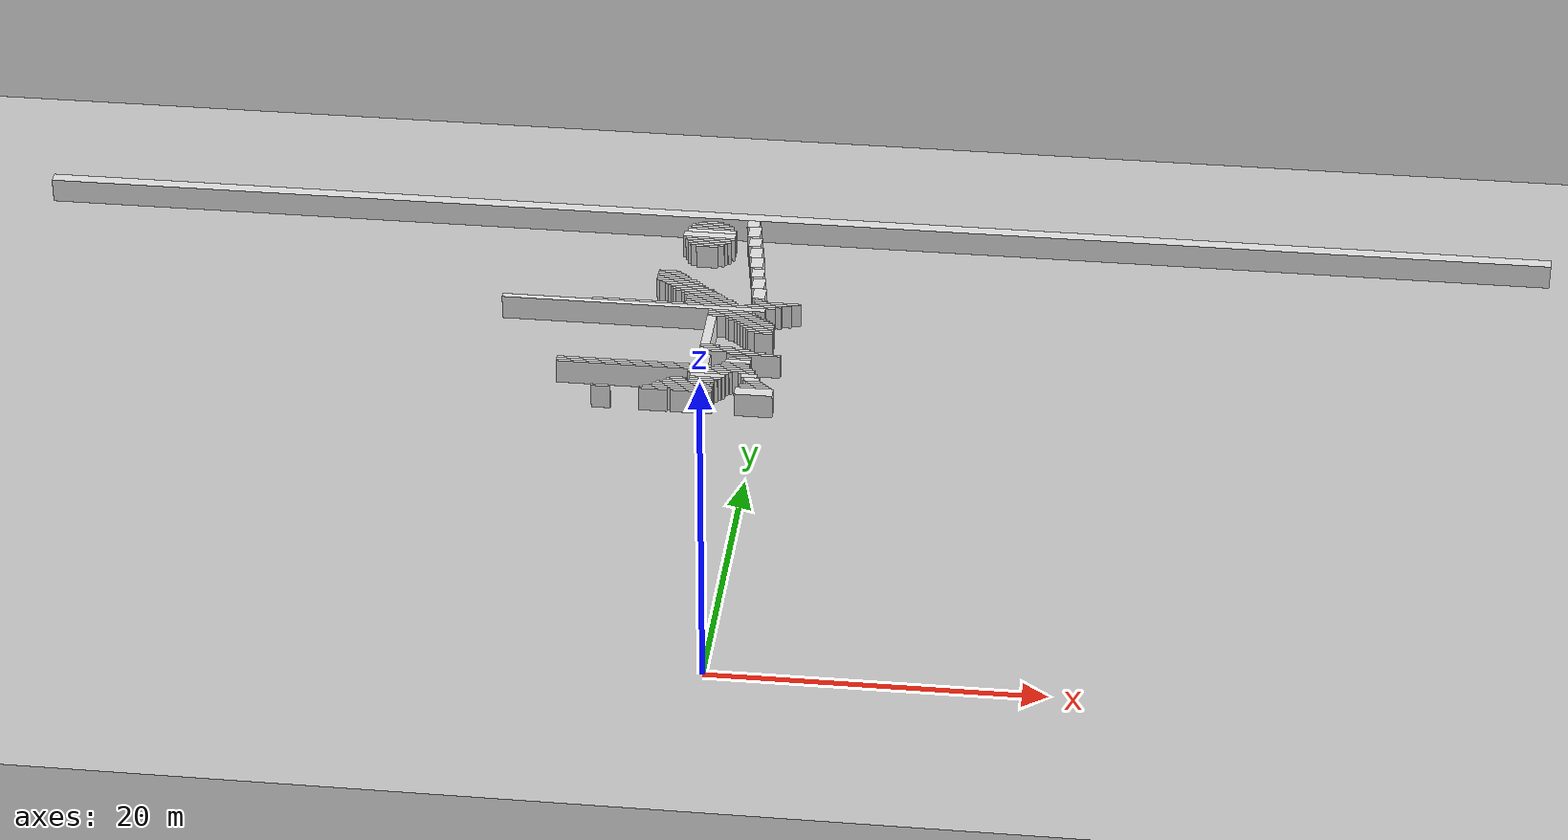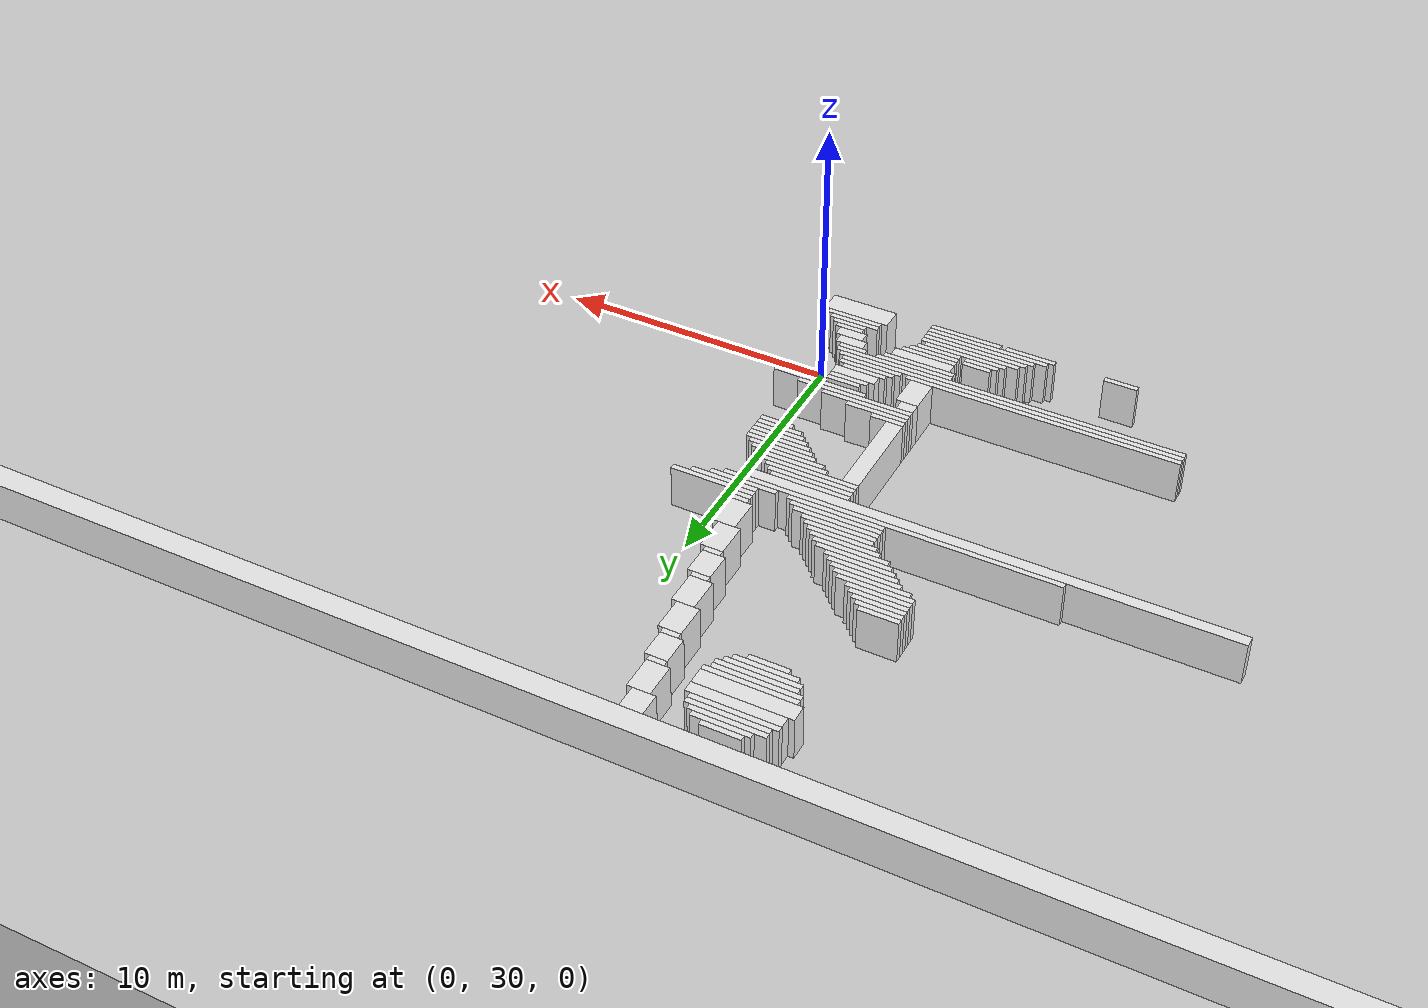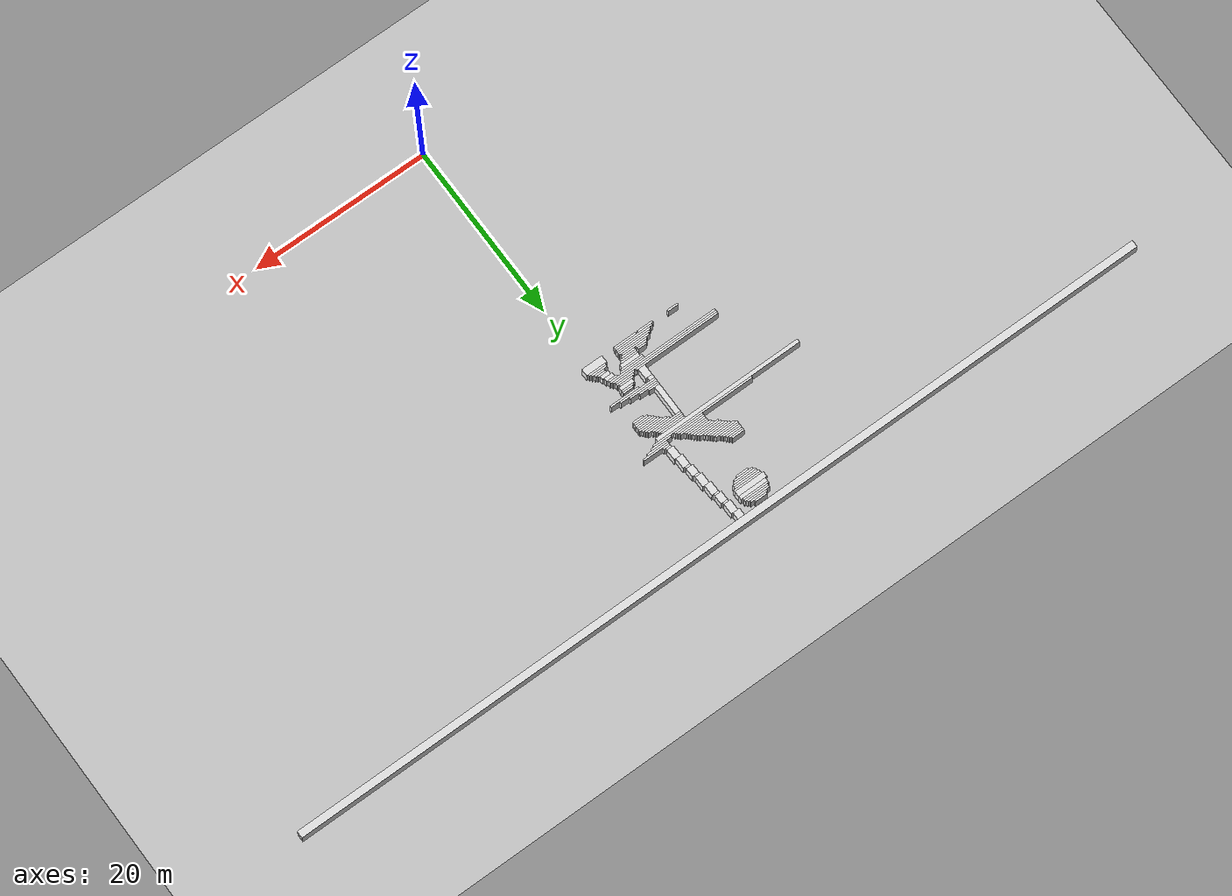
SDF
<sdf version="1.7">
 <world name="default">
  <model name="ground_plane">
   <static>1</static>
   <link name="link">
    <collision name="collision">
     <geometry><plane><normal>0 0 1</normal><size>120 120</size></plane></geometry>
    </collision>
    <visual name="visual">
     <geometry><plane><normal>0 0 1</normal><size>120 120</size></plane></geometry>
     <material>
      <script><uri>file://media/materials/scripts/gazebo.material</uri><name>Gazebo/Grey</name></script>
     </material>
    </visual>
   </link>
  </model>
  <model name="random_complex_02_model">
   <static>1</static>
   <link name="obs_1">
    <pose>-0.4000 48.8000 0.8000 0 0 0</pose>
    <collision name="obs_1_col"><geometry><box><size>99.2000 0.8000 1.6000</size></box></geometry></collision>
    <visual name="obs_1_vis">
     <geometry><box><size>99.2000 0.8000 1.6000</size></box></geometry>
     <material>
      <script><uri>file://media/materials/scripts/gazebo.material</uri><name>Gazebo/White</name></script>
     </material>
    </visual>
   </link>
   <link name="obs_14">
    <pose>-5.5000 47.9000 0.8000 0 0 0</pose>
    <collision name="obs_14_col"><geometry><box><size>1.4000 0.2000 1.6000</size></box></geometry></collision>
    <visual name="obs_14_vis">
     <geometry><box><size>1.4000 0.2000 1.6000</size></box></geometry>
     <material>
      <script><uri>file://media/materials/scripts/gazebo.material</uri><name>Gazebo/White</name></script>
     </material>
    </visual>
   </link>
   <link name="obs_18">
    <pose>-2.8000 48.0000 0.8000 0 0 0</pose>
    <collision name="obs_18_col"><geometry><box><size>0.8000 0.8000 1.6000</size></box></geometry></collision>
    <visual name="obs_18_vis">
     <geometry><box><size>0.8000 0.8000 1.6000</size></box></geometry>
     <material>
      <script><uri>file://media/materials/scripts/gazebo.material</uri><name>Gazebo/White</name></script>
     </material>
    </visual>
   </link>
   <link name="obs_21">
    <pose>-5.4000 47.7000 0.8000 0 0 0</pose>
    <collision name="obs_21_col"><geometry><box><size>2.0000 0.2000 1.6000</size></box></geometry></collision>
    <visual name="obs_21_vis">
     <geometry><box><size>2.0000 0.2000 1.6000</size></box></geometry>
     <material>
      <script><uri>file://media/materials/scripts/gazebo.material</uri><name>Gazebo/White</name></script>
     </material>
    </visual>
   </link>
   <link name="obs_29">
    <pose>-5.5000 47.5000 0.8000 0 0 0</pose>
    <collision name="obs_29_col"><geometry><box><size>2.6000 0.2000 1.6000</size></box></geometry></collision>
    <visual name="obs_29_vis">
     <geometry><box><size>2.6000 0.2000 1.6000</size></box></geometry>
     <material>
      <script><uri>file://media/materials/scripts/gazebo.material</uri><name>Gazebo/White</name></script>
     </material>
    </visual>
   </link>
   <link name="obs_36">
    <pose>-5.4000 47.3000 0.8000 0 0 0</pose>
    <collision name="obs_36_col"><geometry><box><size>2.8000 0.2000 1.6000</size></box></geometry></collision>
    <visual name="obs_36_vis">
     <geometry><box><size>2.8000 0.2000 1.6000</size></box></geometry>
     <material>
      <script><uri>file://media/materials/scripts/gazebo.material</uri><name>Gazebo/White</name></script>
     </material>
    </visual>
   </link>
   <link name="obs_43">
    <pose>-5.5000 47.1000 0.8000 0 0 0</pose>
    <collision name="obs_43_col"><geometry><box><size>3.0000 0.2000 1.6000</size></box></geometry></collision>
    <visual name="obs_43_vis">
     <geometry><box><size>3.0000 0.2000 1.6000</size></box></geometry>
     <material>
      <script><uri>file://media/materials/scripts/gazebo.material</uri><name>Gazebo/White</name></script>
     </material>
    </visual>
   </link>
   <link name="obs_53">
    <pose>-5.4000 46.8000 0.8000 0 0 0</pose>
    <collision name="obs_53_col"><geometry><box><size>3.2000 0.4000 1.6000</size></box></geometry></collision>
    <visual name="obs_53_vis">
     <geometry><box><size>3.2000 0.4000 1.6000</size></box></geometry>
     <material>
      <script><uri>file://media/materials/scripts/gazebo.material</uri><name>Gazebo/White</name></script>
     </material>
    </visual>
   </link>
   <link name="obs_60">
    <pose>-2.6000 47.0000 0.8000 0 0 0</pose>
    <collision name="obs_60_col"><geometry><box><size>0.8000 1.2000 1.6000</size></box></geometry></collision>
    <visual name="obs_60_vis">
     <geometry><box><size>0.8000 1.2000 1.6000</size></box></geometry>
     <material>
      <script><uri>file://media/materials/scripts/gazebo.material</uri><name>Gazebo/White</name></script>
     </material>
    </visual>
   </link>
   <link name="obs_71">
    <pose>-2.5000 46.3000 0.8000 0 0 0</pose>
    <collision name="obs_71_col"><geometry><box><size>0.6000 0.2000 1.6000</size></box></geometry></collision>
    <visual name="obs_71_vis">
     <geometry><box><size>0.6000 0.2000 1.6000</size></box></geometry>
     <material>
      <script><uri>file://media/materials/scripts/gazebo.material</uri><name>Gazebo/White</name></script>
     </material>
    </visual>
   </link>
   <link name="obs_75">
    <pose>-5.5000 46.3000 0.8000 0 0 0</pose>
    <collision name="obs_75_col"><geometry><box><size>3.4000 0.6000 1.6000</size></box></geometry></collision>
    <visual name="obs_75_vis">
     <geometry><box><size>3.4000 0.6000 1.6000</size></box></geometry>
     <material>
      <script><uri>file://media/materials/scripts/gazebo.material</uri><name>Gazebo/White</name></script>
     </material>
    </visual>
   </link>
   <link name="obs_88">
    <pose>-5.4000 45.9000 0.8000 0 0 0</pose>
    <collision name="obs_88_col"><geometry><box><size>3.2000 0.2000 1.6000</size></box></geometry></collision>
    <visual name="obs_88_vis">
     <geometry><box><size>3.2000 0.2000 1.6000</size></box></geometry>
     <material>
      <script><uri>file://media/materials/scripts/gazebo.material</uri><name>Gazebo/White</name></script>
     </material>
    </visual>
   </link>
   <link name="obs_95">
    <pose>-5.5000 45.7000 0.8000 0 0 0</pose>
    <collision name="obs_95_col"><geometry><box><size>3.0000 0.2000 1.6000</size></box></geometry></collision>
    <visual name="obs_95_vis">
     <geometry><box><size>3.0000 0.2000 1.6000</size></box></geometry>
     <material>
      <script><uri>file://media/materials/scripts/gazebo.material</uri><name>Gazebo/White</name></script>
     </material>
    </visual>
   </link>
   <link name="obs_102">
    <pose>-5.4000 45.5000 0.8000 0 0 0</pose>
    <collision name="obs_102_col"><geometry><box><size>2.8000 0.2000 1.6000</size></box></geometry></collision>
    <visual name="obs_102_vis">
     <geometry><box><size>2.8000 0.2000 1.6000</size></box></geometry>
     <material>
      <script><uri>file://media/materials/scripts/gazebo.material</uri><name>Gazebo/White</name></script>
     </material>
    </visual>
   </link>
   <link name="obs_105">
    <pose>-2.4000 45.7000 0.8000 0 0 0</pose>
    <collision name="obs_105_col"><geometry><box><size>0.8000 1.0000 1.6000</size></box></geometry></collision>
    <visual name="obs_105_vis">
     <geometry><box><size>0.8000 1.0000 1.6000</size></box></geometry>
     <material>
      <script><uri>file://media/materials/scripts/gazebo.material</uri><name>Gazebo/White</name></script>
     </material>
    </visual>
   </link>
   <link name="obs_111">
    <pose>-5.5000 45.3000 0.8000 0 0 0</pose>
    <collision name="obs_111_col"><geometry><box><size>2.6000 0.2000 1.6000</size></box></geometry></collision>
    <visual name="obs_111_vis">
     <geometry><box><size>2.6000 0.2000 1.6000</size></box></geometry>
     <material>
      <script><uri>file://media/materials/scripts/gazebo.material</uri><name>Gazebo/White</name></script>
     </material>
    </visual>
   </link>
   <link name="obs_122">
    <pose>-5.5000 45.1000 0.8000 0 0 0</pose>
    <collision name="obs_122_col"><geometry><box><size>2.2000 0.2000 1.6000</size></box></geometry></collision>
    <visual name="obs_122_vis">
     <geometry><box><size>2.2000 0.2000 1.6000</size></box></geometry>
     <material>
      <script><uri>file://media/materials/scripts/gazebo.material</uri><name>Gazebo/White</name></script>
     </material>
    </visual>
   </link>
   <link name="obs_123">
    <pose>-2.3000 45.1000 0.8000 0 0 0</pose>
    <collision name="obs_123_col"><geometry><box><size>0.6000 0.2000 1.6000</size></box></geometry></collision>
    <visual name="obs_123_vis">
     <geometry><box><size>0.6000 0.2000 1.6000</size></box></geometry>
     <material>
      <script><uri>file://media/materials/scripts/gazebo.material</uri><name>Gazebo/White</name></script>
     </material>
    </visual>
   </link>
   <link name="obs_131">
    <pose>-5.5000 44.9000 0.8000 0 0 0</pose>
    <collision name="obs_131_col"><geometry><box><size>1.4000 0.2000 1.6000</size></box></geometry></collision>
    <visual name="obs_131_vis">
     <geometry><box><size>1.4000 0.2000 1.6000</size></box></geometry>
     <material>
      <script><uri>file://media/materials/scripts/gazebo.material</uri><name>Gazebo/White</name></script>
     </material>
    </visual>
   </link>
   <link name="obs_164">
    <pose>-2.2000 44.4000 0.8000 0 0 0</pose>
    <collision name="obs_164_col"><geometry><box><size>0.8000 1.2000 1.6000</size></box></geometry></collision>
    <visual name="obs_164_vis">
     <geometry><box><size>0.8000 1.2000 1.6000</size></box></geometry>
     <material>
      <script><uri>file://media/materials/scripts/gazebo.material</uri><name>Gazebo/White</name></script>
     </material>
    </visual>
   </link>
   <link name="obs_207">
    <pose>-2.0000 43.2000 0.8000 0 0 0</pose>
    <collision name="obs_207_col"><geometry><box><size>0.8000 1.2000 1.6000</size></box></geometry></collision>
    <visual name="obs_207_vis">
     <geometry><box><size>0.8000 1.2000 1.6000</size></box></geometry>
     <material>
      <script><uri>file://media/materials/scripts/gazebo.material</uri><name>Gazebo/White</name></script>
     </material>
    </visual>
   </link>
   <link name="obs_220">
    <pose>-1.9000 42.5000 0.8000 0 0 0</pose>
    <collision name="obs_220_col"><geometry><box><size>0.6000 0.2000 1.6000</size></box></geometry></collision>
    <visual name="obs_220_vis">
     <geometry><box><size>0.6000 0.2000 1.6000</size></box></geometry>
     <material>
      <script><uri>file://media/materials/scripts/gazebo.material</uri><name>Gazebo/White</name></script>
     </material>
    </visual>
   </link>
   <link name="obs_249">
    <pose>-1.8000 41.9000 0.8000 0 0 0</pose>
    <collision name="obs_249_col"><geometry><box><size>0.8000 1.0000 1.6000</size></box></geometry></collision>
    <visual name="obs_249_vis">
     <geometry><box><size>0.8000 1.0000 1.6000</size></box></geometry>
     <material>
      <script><uri>file://media/materials/scripts/gazebo.material</uri><name>Gazebo/White</name></script>
     </material>
    </visual>
   </link>
   <link name="obs_257">
    <pose>-7.5000 41.5000 0.8000 0 0 0</pose>
    <collision name="obs_257_col"><geometry><box><size>1.4000 0.2000 1.6000</size></box></geometry></collision>
    <visual name="obs_257_vis">
     <geometry><box><size>1.4000 0.2000 1.6000</size></box></geometry>
     <material>
      <script><uri>file://media/materials/scripts/gazebo.material</uri><name>Gazebo/White</name></script>
     </material>
    </visual>
   </link>
   <link name="obs_266">
    <pose>-7.4000 41.3000 0.8000 0 0 0</pose>
    <collision name="obs_266_col"><geometry><box><size>1.6000 0.2000 1.6000</size></box></geometry></collision>
    <visual name="obs_266_vis">
     <geometry><box><size>1.6000 0.2000 1.6000</size></box></geometry>
     <material>
      <script><uri>file://media/materials/scripts/gazebo.material</uri><name>Gazebo/White</name></script>
     </material>
    </visual>
   </link>
   <link name="obs_267">
    <pose>-1.7000 41.3000 0.8000 0 0 0</pose>
    <collision name="obs_267_col"><geometry><box><size>0.6000 0.2000 1.6000</size></box></geometry></collision>
    <visual name="obs_267_vis">
     <geometry><box><size>0.6000 0.2000 1.6000</size></box></geometry>
     <material>
      <script><uri>file://media/materials/scripts/gazebo.material</uri><name>Gazebo/White</name></script>
     </material>
    </visual>
   </link>
   <link name="obs_274">
    <pose>-7.3000 41.1000 0.8000 0 0 0</pose>
    <collision name="obs_274_col"><geometry><box><size>1.8000 0.2000 1.6000</size></box></geometry></collision>
    <visual name="obs_274_vis">
     <geometry><box><size>1.8000 0.2000 1.6000</size></box></geometry>
     <material>
      <script><uri>file://media/materials/scripts/gazebo.material</uri><name>Gazebo/White</name></script>
     </material>
    </visual>
   </link>
   <link name="obs_283">
    <pose>-7.2000 40.9000 0.8000 0 0 0</pose>
    <collision name="obs_283_col"><geometry><box><size>2.0000 0.2000 1.6000</size></box></geometry></collision>
    <visual name="obs_283_vis">
     <geometry><box><size>2.0000 0.2000 1.6000</size></box></geometry>
     <material>
      <script><uri>file://media/materials/scripts/gazebo.material</uri><name>Gazebo/White</name></script>
     </material>
    </visual>
   </link>
   <link name="obs_293">
    <pose>-7.1000 40.7000 0.8000 0 0 0</pose>
    <collision name="obs_293_col"><geometry><box><size>2.2000 0.2000 1.6000</size></box></geometry></collision>
    <visual name="obs_293_vis">
     <geometry><box><size>2.2000 0.2000 1.6000</size></box></geometry>
     <material>
      <script><uri>file://media/materials/scripts/gazebo.material</uri><name>Gazebo/White</name></script>
     </material>
    </visual>
   </link>
   <link name="obs_303">
    <pose>-6.9000 40.5000 0.8000 0 0 0</pose>
    <collision name="obs_303_col"><geometry><box><size>2.6000 0.2000 1.6000</size></box></geometry></collision>
    <visual name="obs_303_vis">
     <geometry><box><size>2.6000 0.2000 1.6000</size></box></geometry>
     <material>
      <script><uri>file://media/materials/scripts/gazebo.material</uri><name>Gazebo/White</name></script>
     </material>
    </visual>
   </link>
   <link name="obs_312">
    <pose>-6.7000 40.3000 0.8000 0 0 0</pose>
    <collision name="obs_312_col"><geometry><box><size>2.6000 0.2000 1.6000</size></box></geometry></collision>
    <visual name="obs_312_vis">
     <geometry><box><size>2.6000 0.2000 1.6000</size></box></geometry>
     <material>
      <script><uri>file://media/materials/scripts/gazebo.material</uri><name>Gazebo/White</name></script>
     </material>
    </visual>
   </link>
   <link name="obs_317">
    <pose>-1.6000 40.6000 0.8000 0 0 0</pose>
    <collision name="obs_317_col"><geometry><box><size>0.8000 1.2000 1.6000</size></box></geometry></collision>
    <visual name="obs_317_vis">
     <geometry><box><size>0.8000 1.2000 1.6000</size></box></geometry>
     <material>
      <script><uri>file://media/materials/scripts/gazebo.material</uri><name>Gazebo/White</name></script>
     </material>
    </visual>
   </link>
   <link name="obs_324">
    <pose>-6.4000 40.1000 0.8000 0 0 0</pose>
    <collision name="obs_324_col"><geometry><box><size>2.4000 0.2000 1.6000</size></box></geometry></collision>
    <visual name="obs_324_vis">
     <geometry><box><size>2.4000 0.2000 1.6000</size></box></geometry>
     <material>
      <script><uri>file://media/materials/scripts/gazebo.material</uri><name>Gazebo/White</name></script>
     </material>
    </visual>
   </link>
   <link name="obs_334">
    <pose>-6.2000 39.9000 0.8000 0 0 0</pose>
    <collision name="obs_334_col"><geometry><box><size>2.4000 0.2000 1.6000</size></box></geometry></collision>
    <visual name="obs_334_vis">
     <geometry><box><size>2.4000 0.2000 1.6000</size></box></geometry>
     <material>
      <script><uri>file://media/materials/scripts/gazebo.material</uri><name>Gazebo/White</name></script>
     </material>
    </visual>
   </link>
   <link name="obs_340">
    <pose>-6.0000 39.7000 0.8000 0 0 0</pose>
    <collision name="obs_340_col"><geometry><box><size>2.4000 0.2000 1.6000</size></box></geometry></collision>
    <visual name="obs_340_vis">
     <geometry><box><size>2.4000 0.2000 1.6000</size></box></geometry>
     <material>
      <script><uri>file://media/materials/scripts/gazebo.material</uri><name>Gazebo/White</name></script>
     </material>
    </visual>
   </link>
   <link name="obs_348">
    <pose>-5.7000 39.5000 0.8000 0 0 0</pose>
    <collision name="obs_348_col"><geometry><box><size>2.6000 0.2000 1.6000</size></box></geometry></collision>
    <visual name="obs_348_vis">
     <geometry><box><size>2.6000 0.2000 1.6000</size></box></geometry>
     <material>
      <script><uri>file://media/materials/scripts/gazebo.material</uri><name>Gazebo/White</name></script>
     </material>
    </visual>
   </link>
   <link name="obs_358">
    <pose>-5.5000 39.3000 0.8000 0 0 0</pose>
    <collision name="obs_358_col"><geometry><box><size>2.6000 0.2000 1.6000</size></box></geometry></collision>
    <visual name="obs_358_vis">
     <geometry><box><size>2.6000 0.2000 1.6000</size></box></geometry>
     <material>
      <script><uri>file://media/materials/scripts/gazebo.material</uri><name>Gazebo/White</name></script>
     </material>
    </visual>
   </link>
   <link name="obs_365">
    <pose>-5.2000 39.1000 0.8000 0 0 0</pose>
    <collision name="obs_365_col"><geometry><box><size>2.4000 0.2000 1.6000</size></box></geometry></collision>
    <visual name="obs_365_vis">
     <geometry><box><size>2.4000 0.2000 1.6000</size></box></geometry>
     <material>
      <script><uri>file://media/materials/scripts/gazebo.material</uri><name>Gazebo/White</name></script>
     </material>
    </visual>
   </link>
   <link name="obs_370">
    <pose>-1.4000 39.4000 0.8000 0 0 0</pose>
    <collision name="obs_370_col"><geometry><box><size>0.8000 1.2000 1.6000</size></box></geometry></collision>
    <visual name="obs_370_vis">
     <geometry><box><size>0.8000 1.2000 1.6000</size></box></geometry>
     <material>
      <script><uri>file://media/materials/scripts/gazebo.material</uri><name>Gazebo/White</name></script>
     </material>
    </visual>
   </link>
   <link name="obs_375">
    <pose>-5.0000 38.9000 0.8000 0 0 0</pose>
    <collision name="obs_375_col"><geometry><box><size>2.4000 0.2000 1.6000</size></box></geometry></collision>
    <visual name="obs_375_vis">
     <geometry><box><size>2.4000 0.2000 1.6000</size></box></geometry>
     <material>
      <script><uri>file://media/materials/scripts/gazebo.material</uri><name>Gazebo/White</name></script>
     </material>
    </visual>
   </link>
   <link name="obs_384">
    <pose>-4.8000 38.7000 0.8000 0 0 0</pose>
    <collision name="obs_384_col"><geometry><box><size>2.4000 0.2000 1.6000</size></box></geometry></collision>
    <visual name="obs_384_vis">
     <geometry><box><size>2.4000 0.2000 1.6000</size></box></geometry>
     <material>
      <script><uri>file://media/materials/scripts/gazebo.material</uri><name>Gazebo/White</name></script>
     </material>
    </visual>
   </link>
   <link name="obs_385">
    <pose>-1.3000 38.7000 0.8000 0 0 0</pose>
    <collision name="obs_385_col"><geometry><box><size>0.6000 0.2000 1.6000</size></box></geometry></collision>
    <visual name="obs_385_vis">
     <geometry><box><size>0.6000 0.2000 1.6000</size></box></geometry>
     <material>
      <script><uri>file://media/materials/scripts/gazebo.material</uri><name>Gazebo/White</name></script>
     </material>
    </visual>
   </link>
   <link name="obs_393">
    <pose>-4.7000 38.5000 0.8000 0 0 0</pose>
    <collision name="obs_393_col"><geometry><box><size>2.6000 0.2000 1.6000</size></box></geometry></collision>
    <visual name="obs_393_vis">
     <geometry><box><size>2.6000 0.2000 1.6000</size></box></geometry>
     <material>
      <script><uri>file://media/materials/scripts/gazebo.material</uri><name>Gazebo/White</name></script>
     </material>
    </visual>
   </link>
   <link name="obs_394">
    <pose>-1.2000 38.5000 0.8000 0 0 0</pose>
    <collision name="obs_394_col"><geometry><box><size>0.8000 0.2000 1.6000</size></box></geometry></collision>
    <visual name="obs_394_vis">
     <geometry><box><size>0.8000 0.2000 1.6000</size></box></geometry>
     <material>
      <script><uri>file://media/materials/scripts/gazebo.material</uri><name>Gazebo/White</name></script>
     </material>
    </visual>
   </link>
   <link name="obs_405">
    <pose>-4.5000 38.3000 0.8000 0 0 0</pose>
    <collision name="obs_405_col"><geometry><box><size>3.0000 0.2000 1.6000</size></box></geometry></collision>
    <visual name="obs_405_vis">
     <geometry><box><size>3.0000 0.2000 1.6000</size></box></geometry>
     <material>
      <script><uri>file://media/materials/scripts/gazebo.material</uri><name>Gazebo/White</name></script>
     </material>
    </visual>
   </link>
   <link name="obs_406">
    <pose>-0.1000 38.3000 0.8000 0 0 0</pose>
    <collision name="obs_406_col"><geometry><box><size>3.0000 0.2000 1.6000</size></box></geometry></collision>
    <visual name="obs_406_vis">
     <geometry><box><size>3.0000 0.2000 1.6000</size></box></geometry>
     <material>
      <script><uri>file://media/materials/scripts/gazebo.material</uri><name>Gazebo/White</name></script>
     </material>
    </visual>
   </link>
   <link name="obs_413">
    <pose>-4.4000 38.1000 0.8000 0 0 0</pose>
    <collision name="obs_413_col"><geometry><box><size>3.2000 0.2000 1.6000</size></box></geometry></collision>
    <visual name="obs_413_vis">
     <geometry><box><size>3.2000 0.2000 1.6000</size></box></geometry>
     <material>
      <script><uri>file://media/materials/scripts/gazebo.material</uri><name>Gazebo/White</name></script>
     </material>
    </visual>
   </link>
   <link name="obs_414">
    <pose>-0.4000 38.1000 0.8000 0 0 0</pose>
    <collision name="obs_414_col"><geometry><box><size>2.4000 0.2000 1.6000</size></box></geometry></collision>
    <visual name="obs_414_vis">
     <geometry><box><size>2.4000 0.2000 1.6000</size></box></geometry>
     <material>
      <script><uri>file://media/materials/scripts/gazebo.material</uri><name>Gazebo/White</name></script>
     </material>
    </visual>
   </link>
   <link name="obs_422">
    <pose>-4.3000 37.9000 0.8000 0 0 0</pose>
    <collision name="obs_422_col"><geometry><box><size>3.4000 0.2000 1.6000</size></box></geometry></collision>
    <visual name="obs_422_vis">
     <geometry><box><size>3.4000 0.2000 1.6000</size></box></geometry>
     <material>
      <script><uri>file://media/materials/scripts/gazebo.material</uri><name>Gazebo/White</name></script>
     </material>
    </visual>
   </link>
   <link name="obs_423">
    <pose>-1.0000 37.9000 0.8000 0 0 0</pose>
    <collision name="obs_423_col"><geometry><box><size>2.4000 0.2000 1.6000</size></box></geometry></collision>
    <visual name="obs_423_vis">
     <geometry><box><size>2.4000 0.2000 1.6000</size></box></geometry>
     <material>
      <script><uri>file://media/materials/scripts/gazebo.material</uri><name>Gazebo/White</name></script>
     </material>
    </visual>
   </link>
   <link name="obs_432">
    <pose>-6.1000 37.7000 0.8000 0 0 0</pose>
    <collision name="obs_432_col"><geometry><box><size>11.8000 0.2000 1.6000</size></box></geometry></collision>
    <visual name="obs_432_vis">
     <geometry><box><size>11.8000 0.2000 1.6000</size></box></geometry>
     <material>
      <script><uri>file://media/materials/scripts/gazebo.material</uri><name>Gazebo/White</name></script>
     </material>
    </visual>
   </link>
   <link name="obs_443">
    <pose>-9.3000 37.4000 0.8000 0 0 0</pose>
    <collision name="obs_443_col"><geometry><box><size>17.0000 0.4000 1.6000</size></box></geometry></collision>
    <visual name="obs_443_vis">
     <geometry><box><size>17.0000 0.4000 1.6000</size></box></geometry>
     <material>
      <script><uri>file://media/materials/scripts/gazebo.material</uri><name>Gazebo/White</name></script>
     </material>
    </visual>
   </link>
   <link name="obs_452">
    <pose>-3.0000 37.1000 0.8000 0 0 0</pose>
    <collision name="obs_452_col"><geometry><box><size>2.8000 0.2000 1.6000</size></box></geometry></collision>
    <visual name="obs_452_vis">
     <geometry><box><size>2.8000 0.2000 1.6000</size></box></geometry>
     <material>
      <script><uri>file://media/materials/scripts/gazebo.material</uri><name>Gazebo/White</name></script>
     </material>
    </visual>
   </link>
   <link name="obs_460">
    <pose>-2.9000 36.9000 0.8000 0 0 0</pose>
    <collision name="obs_460_col"><geometry><box><size>3.0000 0.2000 1.6000</size></box></geometry></collision>
    <visual name="obs_460_vis">
     <geometry><box><size>3.0000 0.2000 1.6000</size></box></geometry>
     <material>
      <script><uri>file://media/materials/scripts/gazebo.material</uri><name>Gazebo/White</name></script>
     </material>
    </visual>
   </link>
   <link name="obs_465">
    <pose>-2.8000 36.7000 0.8000 0 0 0</pose>
    <collision name="obs_465_col"><geometry><box><size>3.2000 0.2000 1.6000</size></box></geometry></collision>
    <visual name="obs_465_vis">
     <geometry><box><size>3.2000 0.2000 1.6000</size></box></geometry>
     <material>
      <script><uri>file://media/materials/scripts/gazebo.material</uri><name>Gazebo/White</name></script>
     </material>
    </visual>
   </link>
   <link name="obs_473">
    <pose>-2.7000 36.5000 0.8000 0 0 0</pose>
    <collision name="obs_473_col"><geometry><box><size>3.4000 0.2000 1.6000</size></box></geometry></collision>
    <visual name="obs_473_vis">
     <geometry><box><size>3.4000 0.2000 1.6000</size></box></geometry>
     <material>
      <script><uri>file://media/materials/scripts/gazebo.material</uri><name>Gazebo/White</name></script>
     </material>
    </visual>
   </link>
   <link name="obs_483">
    <pose>-1.9000 36.3000 0.8000 0 0 0</pose>
    <collision name="obs_483_col"><geometry><box><size>2.6000 0.2000 1.6000</size></box></geometry></collision>
    <visual name="obs_483_vis">
     <geometry><box><size>2.6000 0.2000 1.6000</size></box></geometry>
     <material>
      <script><uri>file://media/materials/scripts/gazebo.material</uri><name>Gazebo/White</name></script>
     </material>
    </visual>
   </link>
   <link name="obs_493">
    <pose>-1.7000 36.1000 0.8000 0 0 0</pose>
    <collision name="obs_493_col"><geometry><box><size>2.6000 0.2000 1.6000</size></box></geometry></collision>
    <visual name="obs_493_vis">
     <geometry><box><size>2.6000 0.2000 1.6000</size></box></geometry>
     <material>
      <script><uri>file://media/materials/scripts/gazebo.material</uri><name>Gazebo/White</name></script>
     </material>
    </visual>
   </link>
   <link name="obs_503">
    <pose>-1.4000 35.9000 0.8000 0 0 0</pose>
    <collision name="obs_503_col"><geometry><box><size>2.4000 0.2000 1.6000</size></box></geometry></collision>
    <visual name="obs_503_vis">
     <geometry><box><size>2.4000 0.2000 1.6000</size></box></geometry>
     <material>
      <script><uri>file://media/materials/scripts/gazebo.material</uri><name>Gazebo/White</name></script>
     </material>
    </visual>
   </link>
   <link name="obs_514">
    <pose>-1.2000 35.7000 0.8000 0 0 0</pose>
    <collision name="obs_514_col"><geometry><box><size>2.4000 0.2000 1.6000</size></box></geometry></collision>
    <visual name="obs_514_vis">
     <geometry><box><size>2.4000 0.2000 1.6000</size></box></geometry>
     <material>
      <script><uri>file://media/materials/scripts/gazebo.material</uri><name>Gazebo/White</name></script>
     </material>
    </visual>
   </link>
   <link name="obs_520">
    <pose>-1.1000 35.5000 0.8000 0 0 0</pose>
    <collision name="obs_520_col"><geometry><box><size>2.2000 0.2000 1.6000</size></box></geometry></collision>
    <visual name="obs_520_vis">
     <geometry><box><size>2.2000 0.2000 1.6000</size></box></geometry>
     <material>
      <script><uri>file://media/materials/scripts/gazebo.material</uri><name>Gazebo/White</name></script>
     </material>
    </visual>
   </link>
   <link name="obs_531">
    <pose>-1.0000 35.3000 0.8000 0 0 0</pose>
    <collision name="obs_531_col"><geometry><box><size>2.0000 0.2000 1.6000</size></box></geometry></collision>
    <visual name="obs_531_vis">
     <geometry><box><size>2.0000 0.2000 1.6000</size></box></geometry>
     <material>
      <script><uri>file://media/materials/scripts/gazebo.material</uri><name>Gazebo/White</name></script>
     </material>
    </visual>
   </link>
   <link name="obs_539">
    <pose>-0.9000 35.1000 0.8000 0 0 0</pose>
    <collision name="obs_539_col"><geometry><box><size>1.8000 0.2000 1.6000</size></box></geometry></collision>
    <visual name="obs_539_vis">
     <geometry><box><size>1.8000 0.2000 1.6000</size></box></geometry>
     <material>
      <script><uri>file://media/materials/scripts/gazebo.material</uri><name>Gazebo/White</name></script>
     </material>
    </visual>
   </link>
   <link name="obs_548">
    <pose>-0.8000 34.9000 0.8000 0 0 0</pose>
    <collision name="obs_548_col"><geometry><box><size>1.6000 0.2000 1.6000</size></box></geometry></collision>
    <visual name="obs_548_vis">
     <geometry><box><size>1.6000 0.2000 1.6000</size></box></geometry>
     <material>
      <script><uri>file://media/materials/scripts/gazebo.material</uri><name>Gazebo/White</name></script>
     </material>
    </visual>
   </link>
   <link name="obs_557">
    <pose>-0.6000 34.7000 0.8000 0 0 0</pose>
    <collision name="obs_557_col"><geometry><box><size>1.2000 0.2000 1.6000</size></box></geometry></collision>
    <visual name="obs_557_vis">
     <geometry><box><size>1.2000 0.2000 1.6000</size></box></geometry>
     <material>
      <script><uri>file://media/materials/scripts/gazebo.material</uri><name>Gazebo/White</name></script>
     </material>
    </visual>
   </link>
   <link name="obs_625">
    <pose>-4.1000 34.7000 0.8000 0 0 0</pose>
    <collision name="obs_625_col"><geometry><box><size>0.6000 3.4000 1.6000</size></box></geometry></collision>
    <visual name="obs_625_vis">
     <geometry><box><size>0.6000 3.4000 1.6000</size></box></geometry>
     <material>
      <script><uri>file://media/materials/scripts/gazebo.material</uri><name>Gazebo/White</name></script>
     </material>
    </visual>
   </link>
   <link name="obs_639">
    <pose>-3.8000 32.9000 0.8000 0 0 0</pose>
    <collision name="obs_639_col"><geometry><box><size>1.2000 0.2000 1.6000</size></box></geometry></collision>
    <visual name="obs_639_vis">
     <geometry><box><size>1.2000 0.2000 1.6000</size></box></geometry>
     <material>
      <script><uri>file://media/materials/scripts/gazebo.material</uri><name>Gazebo/White</name></script>
     </material>
    </visual>
   </link>
   <link name="obs_649">
    <pose>-3.3000 32.7000 0.8000 0 0 0</pose>
    <collision name="obs_649_col"><geometry><box><size>2.2000 0.2000 1.6000</size></box></geometry></collision>
    <visual name="obs_649_vis">
     <geometry><box><size>2.2000 0.2000 1.6000</size></box></geometry>
     <material>
      <script><uri>file://media/materials/scripts/gazebo.material</uri><name>Gazebo/White</name></script>
     </material>
    </visual>
   </link>
   <link name="obs_656">
    <pose>-2.8000 32.5000 0.8000 0 0 0</pose>
    <collision name="obs_656_col"><geometry><box><size>3.2000 0.2000 1.6000</size></box></geometry></collision>
    <visual name="obs_656_vis">
     <geometry><box><size>3.2000 0.2000 1.6000</size></box></geometry>
     <material>
      <script><uri>file://media/materials/scripts/gazebo.material</uri><name>Gazebo/White</name></script>
     </material>
    </visual>
   </link>
   <link name="obs_665">
    <pose>-2.3000 32.3000 0.8000 0 0 0</pose>
    <collision name="obs_665_col"><geometry><box><size>4.2000 0.2000 1.6000</size></box></geometry></collision>
    <visual name="obs_665_vis">
     <geometry><box><size>4.2000 0.2000 1.6000</size></box></geometry>
     <material>
      <script><uri>file://media/materials/scripts/gazebo.material</uri><name>Gazebo/White</name></script>
     </material>
    </visual>
   </link>
   <link name="obs_674">
    <pose>-0.9000 32.1000 0.8000 0 0 0</pose>
    <collision name="obs_674_col"><geometry><box><size>3.4000 0.2000 1.6000</size></box></geometry></collision>
    <visual name="obs_674_vis">
     <geometry><box><size>3.4000 0.2000 1.6000</size></box></geometry>
     <material>
      <script><uri>file://media/materials/scripts/gazebo.material</uri><name>Gazebo/White</name></script>
     </material>
    </visual>
   </link>
   <link name="obs_679">
    <pose>-4.1000 32.0000 0.8000 0 0 0</pose>
    <collision name="obs_679_col"><geometry><box><size>0.6000 0.4000 1.6000</size></box></geometry></collision>
    <visual name="obs_679_vis">
     <geometry><box><size>0.6000 0.4000 1.6000</size></box></geometry>
     <material>
      <script><uri>file://media/materials/scripts/gazebo.material</uri><name>Gazebo/White</name></script>
     </material>
    </visual>
   </link>
   <link name="obs_692">
    <pose>-1.6000 31.7000 0.8000 0 0 0</pose>
    <collision name="obs_692_col"><geometry><box><size>1.2000 0.2000 1.6000</size></box></geometry></collision>
    <visual name="obs_692_vis">
     <geometry><box><size>1.2000 0.2000 1.6000</size></box></geometry>
     <material>
      <script><uri>file://media/materials/scripts/gazebo.material</uri><name>Gazebo/White</name></script>
     </material>
    </visual>
   </link>
   <link name="obs_703">
    <pose>-1.7000 31.5000 0.8000 0 0 0</pose>
    <collision name="obs_703_col"><geometry><box><size>1.4000 0.2000 1.6000</size></box></geometry></collision>
    <visual name="obs_703_vis">
     <geometry><box><size>1.4000 0.2000 1.6000</size></box></geometry>
     <material>
      <script><uri>file://media/materials/scripts/gazebo.material</uri><name>Gazebo/White</name></script>
     </material>
    </visual>
   </link>
   <link name="obs_721">
    <pose>-1.8000 31.2000 0.8000 0 0 0</pose>
    <collision name="obs_721_col"><geometry><box><size>1.6000 0.4000 1.6000</size></box></geometry></collision>
    <visual name="obs_721_vis">
     <geometry><box><size>1.6000 0.4000 1.6000</size></box></geometry>
     <material>
      <script><uri>file://media/materials/scripts/gazebo.material</uri><name>Gazebo/White</name></script>
     </material>
    </visual>
   </link>
   <link name="obs_733">
    <pose>-2.0000 30.9000 0.8000 0 0 0</pose>
    <collision name="obs_733_col"><geometry><box><size>1.6000 0.2000 1.6000</size></box></geometry></collision>
    <visual name="obs_733_vis">
     <geometry><box><size>1.6000 0.2000 1.6000</size></box></geometry>
     <material>
      <script><uri>file://media/materials/scripts/gazebo.material</uri><name>Gazebo/White</name></script>
     </material>
    </visual>
   </link>
   <link name="obs_740">
    <pose>-4.0000 31.2000 0.8000 0 0 0</pose>
    <collision name="obs_740_col"><geometry><box><size>0.8000 1.2000 1.6000</size></box></geometry></collision>
    <visual name="obs_740_vis">
     <geometry><box><size>0.8000 1.2000 1.6000</size></box></geometry>
     <material>
      <script><uri>file://media/materials/scripts/gazebo.material</uri><name>Gazebo/White</name></script>
     </material>
    </visual>
   </link>
   <link name="obs_745">
    <pose>-2.0000 30.7000 0.8000 0 0 0</pose>
    <collision name="obs_745_col"><geometry><box><size>2.0000 0.2000 1.6000</size></box></geometry></collision>
    <visual name="obs_745_vis">
     <geometry><box><size>2.0000 0.2000 1.6000</size></box></geometry>
     <material>
      <script><uri>file://media/materials/scripts/gazebo.material</uri><name>Gazebo/White</name></script>
     </material>
    </visual>
   </link>
   <link name="obs_753">
    <pose>-8.3000 30.5000 0.8000 0 0 0</pose>
    <collision name="obs_753_col"><geometry><box><size>9.8000 0.2000 1.6000</size></box></geometry></collision>
    <visual name="obs_753_vis">
     <geometry><box><size>9.8000 0.2000 1.6000</size></box></geometry>
     <material>
      <script><uri>file://media/materials/scripts/gazebo.material</uri><name>Gazebo/White</name></script>
     </material>
    </visual>
   </link>
   <link name="obs_754">
    <pose>-2.1000 30.5000 0.8000 0 0 0</pose>
    <collision name="obs_754_col"><geometry><box><size>2.2000 0.2000 1.6000</size></box></geometry></collision>
    <visual name="obs_754_vis">
     <geometry><box><size>2.2000 0.2000 1.6000</size></box></geometry>
     <material>
      <script><uri>file://media/materials/scripts/gazebo.material</uri><name>Gazebo/White</name></script>
     </material>
    </visual>
   </link>
   <link name="obs_762">
    <pose>-7.0000 30.3000 0.8000 0 0 0</pose>
    <collision name="obs_762_col"><geometry><box><size>12.4000 0.2000 1.6000</size></box></geometry></collision>
    <visual name="obs_762_vis">
     <geometry><box><size>12.4000 0.2000 1.6000</size></box></geometry>
     <material>
      <script><uri>file://media/materials/scripts/gazebo.material</uri><name>Gazebo/White</name></script>
     </material>
    </visual>
   </link>
   <link name="obs_770">
    <pose>-6.9000 30.1000 0.8000 0 0 0</pose>
    <collision name="obs_770_col"><geometry><box><size>12.6000 0.2000 1.6000</size></box></geometry></collision>
    <visual name="obs_770_vis">
     <geometry><box><size>12.6000 0.2000 1.6000</size></box></geometry>
     <material>
      <script><uri>file://media/materials/scripts/gazebo.material</uri><name>Gazebo/White</name></script>
     </material>
    </visual>
   </link>
   <link name="obs_776">
    <pose>-3.4000 29.9000 0.8000 0 0 0</pose>
    <collision name="obs_776_col"><geometry><box><size>2.8000 0.2000 1.6000</size></box></geometry></collision>
    <visual name="obs_776_vis">
     <geometry><box><size>2.8000 0.2000 1.6000</size></box></geometry>
     <material>
      <script><uri>file://media/materials/scripts/gazebo.material</uri><name>Gazebo/White</name></script>
     </material>
    </visual>
   </link>
   <link name="obs_777">
    <pose>-1.1000 29.9000 0.8000 0 0 0</pose>
    <collision name="obs_777_col"><geometry><box><size>1.0000 0.2000 1.6000</size></box></geometry></collision>
    <visual name="obs_777_vis">
     <geometry><box><size>1.0000 0.2000 1.6000</size></box></geometry>
     <material>
      <script><uri>file://media/materials/scripts/gazebo.material</uri><name>Gazebo/White</name></script>
     </material>
    </visual>
   </link>
   <link name="obs_788">
    <pose>-3.5000 29.7000 0.8000 0 0 0</pose>
    <collision name="obs_788_col"><geometry><box><size>2.6000 0.2000 1.6000</size></box></geometry></collision>
    <visual name="obs_788_vis">
     <geometry><box><size>2.6000 0.2000 1.6000</size></box></geometry>
     <material>
      <script><uri>file://media/materials/scripts/gazebo.material</uri><name>Gazebo/White</name></script>
     </material>
    </visual>
   </link>
   <link name="obs_791">
    <pose>-0.9000 29.6000 0.8000 0 0 0</pose>
    <collision name="obs_791_col"><geometry><box><size>1.0000 0.4000 1.6000</size></box></geometry></collision>
    <visual name="obs_791_vis">
     <geometry><box><size>1.0000 0.4000 1.6000</size></box></geometry>
     <material>
      <script><uri>file://media/materials/scripts/gazebo.material</uri><name>Gazebo/White</name></script>
     </material>
    </visual>
   </link>
   <link name="obs_800">
    <pose>-3.5000 29.4000 0.8000 0 0 0</pose>
    <collision name="obs_800_col"><geometry><box><size>2.2000 0.4000 1.6000</size></box></geometry></collision>
    <visual name="obs_800_vis">
     <geometry><box><size>2.2000 0.4000 1.6000</size></box></geometry>
     <material>
      <script><uri>file://media/materials/scripts/gazebo.material</uri><name>Gazebo/White</name></script>
     </material>
    </visual>
   </link>
   <link name="obs_807">
    <pose>-0.7000 29.2000 0.8000 0 0 0</pose>
    <collision name="obs_807_col"><geometry><box><size>1.0000 0.4000 1.6000</size></box></geometry></collision>
    <visual name="obs_807_vis">
     <geometry><box><size>1.0000 0.4000 1.6000</size></box></geometry>
     <material>
      <script><uri>file://media/materials/scripts/gazebo.material</uri><name>Gazebo/White</name></script>
     </material>
    </visual>
   </link>
   <link name="obs_812">
    <pose>-3.6000 29.1000 0.8000 0 0 0</pose>
    <collision name="obs_812_col"><geometry><box><size>2.0000 0.2000 1.6000</size></box></geometry></collision>
    <visual name="obs_812_vis">
     <geometry><box><size>2.0000 0.2000 1.6000</size></box></geometry>
     <material>
      <script><uri>file://media/materials/scripts/gazebo.material</uri><name>Gazebo/White</name></script>
     </material>
    </visual>
   </link>
   <link name="obs_819">
    <pose>-5.3000 28.9000 0.8000 0 0 0</pose>
    <collision name="obs_819_col"><geometry><box><size>1.0000 0.2000 1.6000</size></box></geometry></collision>
    <visual name="obs_819_vis">
     <geometry><box><size>1.0000 0.2000 1.6000</size></box></geometry>
     <material>
      <script><uri>file://media/materials/scripts/gazebo.material</uri><name>Gazebo/White</name></script>
     </material>
    </visual>
   </link>
   <link name="obs_820">
    <pose>-3.7000 28.9000 0.8000 0 0 0</pose>
    <collision name="obs_820_col"><geometry><box><size>1.8000 0.2000 1.6000</size></box></geometry></collision>
    <visual name="obs_820_vis">
     <geometry><box><size>1.8000 0.2000 1.6000</size></box></geometry>
     <material>
      <script><uri>file://media/materials/scripts/gazebo.material</uri><name>Gazebo/White</name></script>
     </material>
    </visual>
   </link>
   <link name="obs_821">
    <pose>-0.5000 28.9000 0.8000 0 0 0</pose>
    <collision name="obs_821_col"><geometry><box><size>1.0000 0.2000 1.6000</size></box></geometry></collision>
    <visual name="obs_821_vis">
     <geometry><box><size>1.0000 0.2000 1.6000</size></box></geometry>
     <material>
      <script><uri>file://media/materials/scripts/gazebo.material</uri><name>Gazebo/White</name></script>
     </material>
    </visual>
   </link>
   <link name="obs_828">
    <pose>-5.4000 28.7000 0.8000 0 0 0</pose>
    <collision name="obs_828_col"><geometry><box><size>1.2000 0.2000 1.6000</size></box></geometry></collision>
    <visual name="obs_828_vis">
     <geometry><box><size>1.2000 0.2000 1.6000</size></box></geometry>
     <material>
      <script><uri>file://media/materials/scripts/gazebo.material</uri><name>Gazebo/White</name></script>
     </material>
    </visual>
   </link>
   <link name="obs_829">
    <pose>-3.8000 28.7000 0.8000 0 0 0</pose>
    <collision name="obs_829_col"><geometry><box><size>1.6000 0.2000 1.6000</size></box></geometry></collision>
    <visual name="obs_829_vis">
     <geometry><box><size>1.6000 0.2000 1.6000</size></box></geometry>
     <material>
      <script><uri>file://media/materials/scripts/gazebo.material</uri><name>Gazebo/White</name></script>
     </material>
    </visual>
   </link>
   <link name="obs_830">
    <pose>-0.4000 28.7000 0.8000 0 0 0</pose>
    <collision name="obs_830_col"><geometry><box><size>1.2000 0.2000 1.6000</size></box></geometry></collision>
    <visual name="obs_830_vis">
     <geometry><box><size>1.2000 0.2000 1.6000</size></box></geometry>
     <material>
      <script><uri>file://media/materials/scripts/gazebo.material</uri><name>Gazebo/White</name></script>
     </material>
    </visual>
   </link>
   <link name="obs_840">
    <pose>-4.7000 28.5000 0.8000 0 0 0</pose>
    <collision name="obs_840_col"><geometry><box><size>3.0000 0.2000 1.6000</size></box></geometry></collision>
    <visual name="obs_840_vis">
     <geometry><box><size>3.0000 0.2000 1.6000</size></box></geometry>
     <material>
      <script><uri>file://media/materials/scripts/gazebo.material</uri><name>Gazebo/White</name></script>
     </material>
    </visual>
   </link>
   <link name="obs_841">
    <pose>-0.5000 28.5000 0.8000 0 0 0</pose>
    <collision name="obs_841_col"><geometry><box><size>1.8000 0.2000 1.6000</size></box></geometry></collision>
    <visual name="obs_841_vis">
     <geometry><box><size>1.8000 0.2000 1.6000</size></box></geometry>
     <material>
      <script><uri>file://media/materials/scripts/gazebo.material</uri><name>Gazebo/White</name></script>
     </material>
    </visual>
   </link>
   <link name="obs_851">
    <pose>-4.8000 28.3000 0.8000 0 0 0</pose>
    <collision name="obs_851_col"><geometry><box><size>3.6000 0.2000 1.6000</size></box></geometry></collision>
    <visual name="obs_851_vis">
     <geometry><box><size>3.6000 0.2000 1.6000</size></box></geometry>
     <material>
      <script><uri>file://media/materials/scripts/gazebo.material</uri><name>Gazebo/White</name></script>
     </material>
    </visual>
   </link>
   <link name="obs_852">
    <pose>-0.4000 28.3000 0.8000 0 0 0</pose>
    <collision name="obs_852_col"><geometry><box><size>2.0000 0.2000 1.6000</size></box></geometry></collision>
    <visual name="obs_852_vis">
     <geometry><box><size>2.0000 0.2000 1.6000</size></box></geometry>
     <material>
      <script><uri>file://media/materials/scripts/gazebo.material</uri><name>Gazebo/White</name></script>
     </material>
    </visual>
   </link>
   <link name="obs_859">
    <pose>-4.9000 28.1000 0.8000 0 0 0</pose>
    <collision name="obs_859_col"><geometry><box><size>3.8000 0.2000 1.6000</size></box></geometry></collision>
    <visual name="obs_859_vis">
     <geometry><box><size>3.8000 0.2000 1.6000</size></box></geometry>
     <material>
      <script><uri>file://media/materials/scripts/gazebo.material</uri><name>Gazebo/White</name></script>
     </material>
    </visual>
   </link>
   <link name="obs_869">
    <pose>-5.0000 27.9000 0.8000 0 0 0</pose>
    <collision name="obs_869_col"><geometry><box><size>4.0000 0.2000 1.6000</size></box></geometry></collision>
    <visual name="obs_869_vis">
     <geometry><box><size>4.0000 0.2000 1.6000</size></box></geometry>
     <material>
      <script><uri>file://media/materials/scripts/gazebo.material</uri><name>Gazebo/White</name></script>
     </material>
    </visual>
   </link>
   <link name="obs_880">
    <pose>-5.2000 27.7000 0.8000 0 0 0</pose>
    <collision name="obs_880_col"><geometry><box><size>4.4000 0.2000 1.6000</size></box></geometry></collision>
    <visual name="obs_880_vis">
     <geometry><box><size>4.4000 0.2000 1.6000</size></box></geometry>
     <material>
      <script><uri>file://media/materials/scripts/gazebo.material</uri><name>Gazebo/White</name></script>
     </material>
    </visual>
   </link>
   <link name="obs_884">
    <pose>-0.4000 27.8000 0.8000 0 0 0</pose>
    <collision name="obs_884_col"><geometry><box><size>2.4000 0.8000 1.6000</size></box></geometry></collision>
    <visual name="obs_884_vis">
     <geometry><box><size>2.4000 0.8000 1.6000</size></box></geometry>
     <material>
      <script><uri>file://media/materials/scripts/gazebo.material</uri><name>Gazebo/White</name></script>
     </material>
    </visual>
   </link>
   <link name="obs_887">
    <pose>-10.0000 27.5000 0.8000 0 0 0</pose>
    <collision name="obs_887_col"><geometry><box><size>1.2000 0.2000 1.6000</size></box></geometry></collision>
    <visual name="obs_887_vis">
     <geometry><box><size>1.2000 0.2000 1.6000</size></box></geometry>
     <material>
      <script><uri>file://media/materials/scripts/gazebo.material</uri><name>Gazebo/White</name></script>
     </material>
    </visual>
   </link>
   <link name="obs_888">
    <pose>-6.7000 27.5000 0.8000 0 0 0</pose>
    <collision name="obs_888_col"><geometry><box><size>1.8000 0.2000 1.6000</size></box></geometry></collision>
    <visual name="obs_888_vis">
     <geometry><box><size>1.8000 0.2000 1.6000</size></box></geometry>
     <material>
      <script><uri>file://media/materials/scripts/gazebo.material</uri><name>Gazebo/White</name></script>
     </material>
    </visual>
   </link>
   <link name="obs_889">
    <pose>-4.3000 27.5000 0.8000 0 0 0</pose>
    <collision name="obs_889_col"><geometry><box><size>2.6000 0.2000 1.6000</size></box></geometry></collision>
    <visual name="obs_889_vis">
     <geometry><box><size>2.6000 0.2000 1.6000</size></box></geometry>
     <material>
      <script><uri>file://media/materials/scripts/gazebo.material</uri><name>Gazebo/White</name></script>
     </material>
    </visual>
   </link>
  </model>
 </world>
</sdf>
